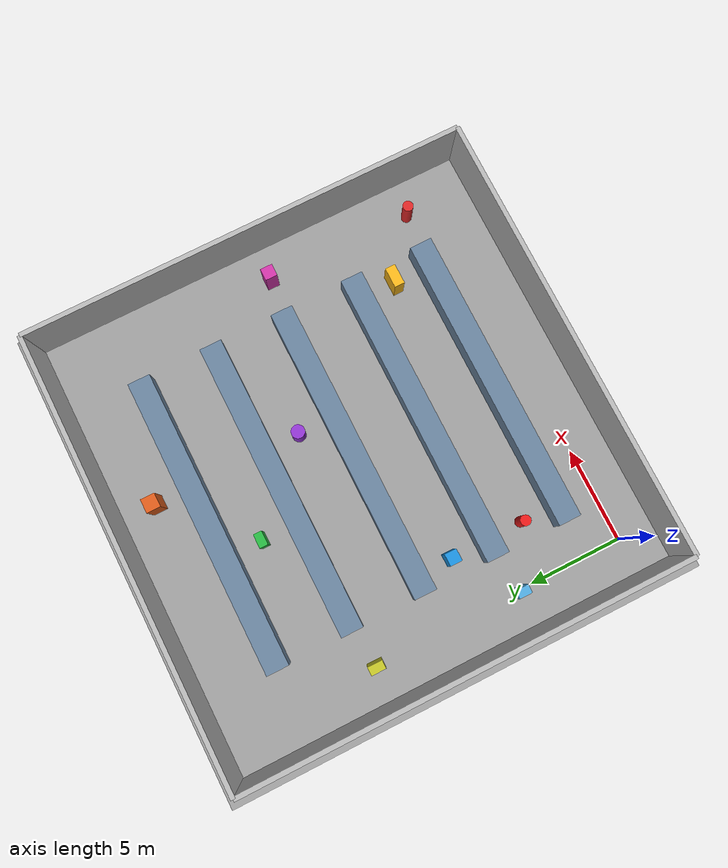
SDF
<?xml version="1.0"?>
<sdf version="1.6">
  <world name="factory_environment_v3_dynamic_obstacles">
    <!-- Direct Light to prevent online fetching -->
    <!-- ==================== sun：方向光 ==================== -->
    <!-- 内置方向光：从 (-0.5, 0.1, -0.9) 方向照射，开阴影，
         衰减范围 1000m，避免依赖在线 sun 模型。 -->
    <light name="sun" type="directional">
      <cast_shadows>1</cast_shadows>
      <pose>0 0 10 0 0 0</pose>
      <diffuse>0.8 0.8 0.8 1</diffuse>
      <specular>0.2 0.2 0.2 1</specular>
      <attenuation>
        <range>1000</range>
        <constant>0.9</constant>
        <linear>0.01</linear>
        <quadratic>0.001</quadratic>
      </attenuation>
      <direction>-0.5 0.1 -0.9</direction>
    </light>

    <!-- Ground -->
    <!-- ==================== ground：地面 ==================== -->
    <!-- 静态地面：26m × 26m × 0.05m，整体位于 (10, 10) 中心，
         使场地有效范围约为 x/y ∈ [0, 20]（与巡检点坐标对齐）。 -->
    <model name="ground">
      <static>true</static>
      <link name="ground_link">
        <collision name="collision">
          <geometry><box><size>26 26 0.05</size></box></geometry>
        </collision>
        <visual name="visual">
          <geometry><box><size>26 26 0.05</size></box></geometry>
          <material>
            <ambient>0.6 0.6 0.6 1</ambient>
            <diffuse>0.6 0.6 0.6 1</diffuse>
          </material>
        </visual>
      </link>
      <pose>10 10 -0.025 0 0 0</pose>
    </model>

    <!-- Walls -->
    <!-- ==================== 四面围墙 ==================== -->
    <!-- 北墙（y=22）、南墙（y=-2）、西墙（x=-2）、东墙（x=22）：
         均为 24m 长 × 0.25m 厚 × 3.0m 高的静态墙体，围成
         [0,20]×[0,20] 的有效导航区域。 -->
    <model name="north_wall">
      <static>true</static>
      <pose>10 22 1.5 0 0 0</pose>
      <link name="link">
        <collision name="collision"><geometry><box><size>24 0.25 3.0</size></box></geometry></collision>
        <visual name="visual"><geometry><box><size>24 0.25 3.0</size></box></geometry><material><ambient>0.7 0.7 0.7 1</ambient><diffuse>0.7 0.7 0.7 1</diffuse></material></visual>
      </link>
    </model>
    <model name="south_wall">
      <static>true</static>
      <pose>10 -2 1.5 0 0 0</pose>
      <link name="link">
        <collision name="collision"><geometry><box><size>24 0.25 3.0</size></box></geometry></collision>
        <visual name="visual"><geometry><box><size>24 0.25 3.0</size></box></geometry><material><ambient>0.7 0.7 0.7 1</ambient><diffuse>0.7 0.7 0.7 1</diffuse></material></visual>
      </link>
    </model>
    <model name="west_wall">
      <static>true</static>
      <pose>-2 10 1.5 0 0 0</pose>
      <link name="link">
        <collision name="collision"><geometry><box><size>0.25 24 3.0</size></box></geometry></collision>
        <visual name="visual"><geometry><box><size>0.25 24 3.0</size></box></geometry><material><ambient>0.7 0.7 0.7 1</ambient><diffuse>0.7 0.7 0.7 1</diffuse></material></visual>
      </link>
    </model>
    <model name="east_wall">
      <static>true</static>
      <pose>22 10 1.5 0 0 0</pose>
      <link name="link">
        <collision name="collision"><geometry><box><size>0.25 24 3.0</size></box></geometry></collision>
        <visual name="visual"><geometry><box><size>0.25 24 3.0</size></box></geometry><material><ambient>0.7 0.7 0.7 1</ambient><diffuse>0.7 0.7 0.7 1</diffuse></material></visual>
      </link>
    </model>

    <!-- 5 Rows of Desks/Machines with 4m spacing -->
    <!-- ==================== 5 排工作台（desk_row_1~5） ==================== -->
    <!-- 静态设备排：每排 16m × 1.2m × 1.2m，位于 x=10 沿 y 方向
         每 4m 一排（y=18/14/10/6/2），将场地分割成
         y=4/8/12/16/20 五条东西向巡检通道。 -->
    <model name="desk_row_1">
      <static>true</static>
      <pose>10 18 0.6 0 0 0</pose>
      <link name="link">
        <collision name="collision"><geometry><box><size>16 1.2 1.2</size></box></geometry></collision>
        <visual name="visual"><geometry><box><size>16 1.2 1.2</size></box></geometry><material><ambient>0.4 0.5 0.6 1</ambient><diffuse>0.4 0.5 0.6 1</diffuse></material></visual>
      </link>
    </model>
    <model name="desk_row_2">
      <static>true</static>
      <pose>10 14 0.6 0 0 0</pose>
      <link name="link">
        <collision name="collision"><geometry><box><size>16 1.2 1.2</size></box></geometry></collision>
        <visual name="visual"><geometry><box><size>16 1.2 1.2</size></box></geometry><material><ambient>0.4 0.5 0.6 1</ambient><diffuse>0.4 0.5 0.6 1</diffuse></material></visual>
      </link>
    </model>
    <model name="desk_row_3">
      <static>true</static>
      <pose>10 10 0.6 0 0 0</pose>
      <link name="link">
        <collision name="collision"><geometry><box><size>16 1.2 1.2</size></box></geometry></collision>
        <visual name="visual"><geometry><box><size>16 1.2 1.2</size></box></geometry><material><ambient>0.4 0.5 0.6 1</ambient><diffuse>0.4 0.5 0.6 1</diffuse></material></visual>
      </link>
    </model>
    <model name="desk_row_4">
      <static>true</static>
      <pose>10 6 0.6 0 0 0</pose>
      <link name="link">
        <collision name="collision"><geometry><box><size>16 1.2 1.2</size></box></geometry></collision>
        <visual name="visual"><geometry><box><size>16 1.2 1.2</size></box></geometry><material><ambient>0.4 0.5 0.6 1</ambient><diffuse>0.4 0.5 0.6 1</diffuse></material></visual>
      </link>
    </model>
    <model name="desk_row_5">
      <static>true</static>
      <pose>10 2 0.6 0 0 0</pose>
      <link name="link">
        <collision name="collision"><geometry><box><size>16 1.2 1.2</size></box></geometry></collision>
        <visual name="visual"><geometry><box><size>16 1.2 1.2</size></box></geometry><material><ambient>0.4 0.5 0.6 1</ambient><diffuse>0.4 0.5 0.6 1</diffuse></material></visual>
      </link>
    </model>

    <!-- ==================== DYNAMIC ROUTE OBSTACLES ==================== -->
    <!-- ==================== 动态路线障碍物（路点运动插件驱动） ==================== -->

    <!-- Route y=4, west half: cylinder crosses the route but avoids x=0/10/20. -->
    <!-- dyn_cylinder_y04_west：红色圆柱（半径 0.28m、高 1.40m），
         在 y=4 通道西半段沿 x 方向往复运动（避开 x=0/10/20 巡检点）。 -->
    <model name="dyn_cylinder_y04_west">
      <static>false</static>
      <pose>3 4 0.70 0 0 0</pose>
      <link name="body">
        <gravity>false</gravity>
        <collision name="collision">
          <geometry><cylinder><radius>0.28</radius><length>1.40</length></cylinder></geometry>
          <surface><contact><collide_without_contact>false</collide_without_contact></contact><friction><ode><mu>0.0</mu><mu2>0.0</mu2></ode></friction></surface>
        </collision>
        <visual name="visual">
          <geometry><cylinder><radius>0.28</radius><length>1.40</length></cylinder></geometry>
          <material><ambient>0.90 0.10 0.10 1</ambient><diffuse>0.90 0.10 0.10 1</diffuse></material>
        </visual>
      </link>
      <!-- 路点运动插件：x=3↔8 往复（每程约 20s，含 2s 原地转向）。 -->
      <plugin name="waypoint_motion" filename="libm20_waypoint_obstacle_plugin.so">
        <loop>true</loop>
        <trajectory>0 3 4 0.70 0 0 0;20 8 4 0.70 0 0 0;22 8 4 0.70 0 0 3.14159;42 3 4 0.70 0 0 3.14159;44 3 4 0.70 0 0 6.28318</trajectory>
      </plugin>
    </model>

    <!-- Route y=4, east half: rectangular cart. -->
    <!-- dyn_cart_y04_east：橙色长方体小车（1.10m × 0.55m × 1.30m），
         在 y=4 通道东半段沿 x 方向往复运动。 -->
    <model name="dyn_cart_y04_east">
      <static>false</static>
      <pose>17 4 0.65 0 0 3.14159</pose>
      <link name="body">
        <gravity>false</gravity>
        <collision name="collision">
          <geometry><box><size>1.10 0.55 1.30</size></box></geometry>
          <surface><contact><collide_without_contact>false</collide_without_contact></contact><friction><ode><mu>0.0</mu><mu2>0.0</mu2></ode></friction></surface>
        </collision>
        <visual name="visual">
          <geometry><box><size>1.10 0.55 1.30</size></box></geometry>
          <material><ambient>0.95 0.70 0.10 1</ambient><diffuse>0.95 0.70 0.10 1</diffuse></material>
        </visual>
      </link>
      <!-- 路点运动插件：x=17↔12 往复（每程约 22s，含 2s 原地转向）。 -->
      <plugin name="waypoint_motion" filename="libm20_waypoint_obstacle_plugin.so">
        <loop>true</loop>
        <trajectory>0 17 4 0.65 0 0 3.14159;22 12 4 0.65 0 0 3.14159;24 12 4 0.65 0 0 6.28318;46 17 4 0.65 0 0 6.28318;48 17 4 0.65 0 0 9.42477</trajectory>
      </plugin>
    </model>

    <!-- Route y=8, west half: square pillar. -->
    <!-- dyn_square_pillar_y08_west：蓝色方形柱体（0.65m 见方、高 1.40m），
         在 y=8 通道西半段沿 x 方向往复运动。 -->
    <model name="dyn_square_pillar_y08_west">
      <static>false</static>
      <pose>3 8 0.70 0 0 0</pose>
      <link name="body">
        <gravity>false</gravity>
        <collision name="collision">
          <geometry><box><size>0.65 0.65 1.40</size></box></geometry>
          <surface><contact><collide_without_contact>false</collide_without_contact></contact><friction><ode><mu>0.0</mu><mu2>0.0</mu2></ode></friction></surface>
        </collision>
        <visual name="visual">
          <geometry><box><size>0.65 0.65 1.40</size></box></geometry>
          <material><ambient>0.10 0.55 0.85 1</ambient><diffuse>0.10 0.55 0.85 1</diffuse></material>
        </visual>
      </link>
      <!-- 路点运动插件：x=3↔8 往复（每程约 24s，含 2s 原地转向）。 -->
      <plugin name="waypoint_motion" filename="libm20_waypoint_obstacle_plugin.so">
        <loop>true</loop>
        <trajectory>0 3 8 0.70 0 0 0;24 8 8 0.70 0 0 0;26 8 8 0.70 0 0 3.14159;50 3 8 0.70 0 0 3.14159;52 3 8 0.70 0 0 6.28318</trajectory>
      </plugin>
    </model>

    <!-- Route y=12, east half: large cylinder. -->
    <!-- dyn_cylinder_y12_east：紫色大圆柱（半径 0.36m、高 1.20m），
         在 y=12 通道东半段沿 x 方向往复运动。 -->
    <model name="dyn_cylinder_y12_east">
      <static>false</static>
      <pose>12 12 0.60 0 0 0</pose>
      <link name="body">
        <gravity>false</gravity>
        <collision name="collision">
          <geometry><cylinder><radius>0.36</radius><length>1.20</length></cylinder></geometry>
          <surface><contact><collide_without_contact>false</collide_without_contact></contact><friction><ode><mu>0.0</mu><mu2>0.0</mu2></ode></friction></surface>
        </collision>
        <visual name="visual">
          <geometry><cylinder><radius>0.36</radius><length>1.20</length></cylinder></geometry>
          <material><ambient>0.55 0.20 0.80 1</ambient><diffuse>0.55 0.20 0.80 1</diffuse></material>
        </visual>
      </link>
      <!-- 路点运动插件：x=12↔17 往复（每程约 20s，含 2s 原地转向）。 -->
      <plugin name="waypoint_motion" filename="libm20_waypoint_obstacle_plugin.so">
        <loop>true</loop>
        <trajectory>0 12 12 0.60 0 0 0;20 17 12 0.60 0 0 0;22 17 12 0.60 0 0 3.14159;42 12 12 0.60 0 0 3.14159;44 12 12 0.60 0 0 6.28318</trajectory>
      </plugin>
    </model>

    <!-- Route y=16, west half: low rectangular cart. -->
    <!-- dyn_cart_y16_west：绿色低矮小车（0.75m × 0.45m × 1.30m），
         在 y=16 通道西半段沿 x 方向往复运动。 -->
    <model name="dyn_cart_y16_west">
      <static>false</static>
      <pose>8 16 0.65 0 0 3.14159</pose>
      <link name="body">
        <gravity>false</gravity>
        <collision name="collision">
          <geometry><box><size>0.75 0.45 1.30</size></box></geometry>
          <surface><contact><collide_without_contact>false</collide_without_contact></contact><friction><ode><mu>0.0</mu><mu2>0.0</mu2></ode></friction></surface>
        </collision>
        <visual name="visual">
          <geometry><box><size>0.75 0.45 1.30</size></box></geometry>
          <material><ambient>0.15 0.70 0.25 1</ambient><diffuse>0.15 0.70 0.25 1</diffuse></material>
        </visual>
      </link>
      <!-- 路点运动插件：x=8↔3 往复（每程约 22s，含 2s 原地转向）。 -->
      <plugin name="waypoint_motion" filename="libm20_waypoint_obstacle_plugin.so">
        <loop>true</loop>
        <trajectory>0 8 16 0.65 0 0 3.14159;22 3 16 0.65 0 0 3.14159;24 3 16 0.65 0 0 6.28318;46 8 16 0.65 0 0 6.28318;48 8 16 0.65 0 0 9.42477</trajectory>
      </plugin>
    </model>

    <!-- Route y=20, east half: tall square pillar. -->
    <!-- dyn_square_pillar_y20_east：橙色高方形柱体（0.75m 见方、高 1.60m），
         在 y=20 通道东半段沿 x 方向往复运动。 -->
    <model name="dyn_square_pillar_y20_east">
      <static>false</static>
      <pose>12 20 0.80 0 0 0</pose>
      <link name="body">
        <gravity>false</gravity>
        <collision name="collision">
          <geometry><box><size>0.75 0.75 1.60</size></box></geometry>
          <surface><contact><collide_without_contact>false</collide_without_contact></contact><friction><ode><mu>0.0</mu><mu2>0.0</mu2></ode></friction></surface>
        </collision>
        <visual name="visual">
          <geometry><box><size>0.75 0.75 1.60</size></box></geometry>
          <material><ambient>0.85 0.35 0.10 1</ambient><diffuse>0.85 0.35 0.10 1</diffuse></material>
        </visual>
      </link>
      <!-- 路点运动插件：x=12↔17 往复（每程约 24s，含 2s 原地转向）。 -->
      <plugin name="waypoint_motion" filename="libm20_waypoint_obstacle_plugin.so">
        <loop>true</loop>
        <trajectory>0 12 20 0.80 0 0 0;24 17 20 0.80 0 0 0;26 17 20 0.80 0 0 3.14159;50 12 20 0.80 0 0 3.14159;52 12 20 0.80 0 0 6.28318</trajectory>
      </plugin>
    </model>

    <!-- Vertical turn corridor x=20, between y=0 and y=4. -->
    <!-- dyn_cylinder_x20_lower：红色圆柱（半径 0.28m、高 1.40m），
         在 x=20 竖向转弯走廊 y∈[0,4] 段沿 y 方向小幅往复（偏航 90° 放置）。 -->
    <model name="dyn_cylinder_x20_lower">
      <static>false</static>
      <pose>20 1.7 0.70 0 0 1.5708</pose>
      <link name="body">
        <gravity>false</gravity>
        <collision name="collision">
          <geometry><cylinder><radius>0.28</radius><length>1.40</length></cylinder></geometry>
          <surface><contact><collide_without_contact>false</collide_without_contact></contact><friction><ode><mu>0.0</mu><mu2>0.0</mu2></ode></friction></surface>
        </collision>
        <visual name="visual">
          <geometry><cylinder><radius>0.28</radius><length>1.40</length></cylinder></geometry>
          <material><ambient>0.85 0.15 0.15 1</ambient><diffuse>0.85 0.15 0.15 1</diffuse></material>
        </visual>
      </link>
      <!-- 路点运动插件：y=1.7↔2.3 往复（每程 5s，含 2s 原地转向）。 -->
      <plugin name="waypoint_motion" filename="libm20_waypoint_obstacle_plugin.so">
        <loop>true</loop>
        <trajectory>0 20 1.7 0.70 0 0 1.5708;3 20 2.3 0.70 0 0 1.5708;5 20 2.3 0.70 0 0 4.71239;8 20 1.7 0.70 0 0 4.71239;10 20 1.7 0.70 0 0 7.85398</trajectory>
      </plugin>
    </model>

    <!-- Vertical turn corridor x=0, between y=4 and y=8. -->
    <!-- dyn_box_x00_04_08：浅蓝色长方体（0.70m × 0.45m × 1.30m），
         在 x=0 竖向转弯走廊 y∈[4,8] 段沿 y 方向小幅往复。 -->
    <model name="dyn_box_x00_04_08">
      <static>false</static>
      <pose>0 5.7 0.65 0 0 1.5708</pose>
      <link name="body">
        <gravity>false</gravity>
        <collision name="collision">
          <geometry><box><size>0.70 0.45 1.30</size></box></geometry>
          <surface><contact><collide_without_contact>false</collide_without_contact></contact><friction><ode><mu>0.0</mu><mu2>0.0</mu2></ode></friction></surface>
        </collision>
        <visual name="visual">
          <geometry><box><size>0.70 0.45 1.30</size></box></geometry>
          <material><ambient>0.30 0.65 0.85 1</ambient><diffuse>0.30 0.65 0.85 1</diffuse></material>
        </visual>
      </link>
      <!-- 路点运动插件：y=5.7↔6.3 往复（每程 5s，含 2s 原地转向）。 -->
      <plugin name="waypoint_motion" filename="libm20_waypoint_obstacle_plugin.so">
        <loop>true</loop>
        <trajectory>0 0 5.7 0.65 0 0 1.5708;3 0 6.3 0.65 0 0 1.5708;5 0 6.3 0.65 0 0 4.71239;8 0 5.7 0.65 0 0 4.71239;10 0 5.7 0.65 0 0 7.85398</trajectory>
      </plugin>
    </model>

    <!-- Vertical turn corridor x=20, between y=8 and y=12. -->
    <!-- dyn_square_x20_08_12：品红色方形柱体（0.65m 见方、高 1.50m），
         在 x=20 竖向转弯走廊 y∈[8,12] 段沿 y 方向小幅往复。 -->
    <model name="dyn_square_x20_08_12">
      <static>false</static>
      <pose>20 9.7 0.75 0 0 1.5708</pose>
      <link name="body">
        <gravity>false</gravity>
        <collision name="collision">
          <geometry><box><size>0.65 0.65 1.50</size></box></geometry>
          <surface><contact><collide_without_contact>false</collide_without_contact></contact><friction><ode><mu>0.0</mu><mu2>0.0</mu2></ode></friction></surface>
        </collision>
        <visual name="visual">
          <geometry><box><size>0.65 0.65 1.50</size></box></geometry>
          <material><ambient>0.80 0.20 0.65 1</ambient><diffuse>0.80 0.20 0.65 1</diffuse></material>
        </visual>
      </link>
      <!-- 路点运动插件：y=9.7↔10.3 往复（每程 5s，含 2s 原地转向）。 -->
      <plugin name="waypoint_motion" filename="libm20_waypoint_obstacle_plugin.so">
        <loop>true</loop>
        <trajectory>0 20 9.7 0.75 0 0 1.5708;3 20 10.3 0.75 0 0 1.5708;5 20 10.3 0.75 0 0 4.71239;8 20 9.7 0.75 0 0 4.71239;10 20 9.7 0.75 0 0 7.85398</trajectory>
      </plugin>
    </model>

    <!-- Vertical turn corridor x=0, between y=12 and y=16. -->
    <!-- dyn_cart_x00_12_16：黄色长方体小车（0.80m × 0.45m × 1.30m），
         在 x=0 竖向转弯走廊 y∈[12,16] 段沿 y 方向小幅往复。 -->
    <model name="dyn_cart_x00_12_16">
      <static>false</static>
      <pose>0 13.7 0.65 0 0 1.5708</pose>
      <link name="body">
        <gravity>false</gravity>
        <collision name="collision">
          <geometry><box><size>0.80 0.45 1.30</size></box></geometry>
          <surface><contact><collide_without_contact>false</collide_without_contact></contact><friction><ode><mu>0.0</mu><mu2>0.0</mu2></ode></friction></surface>
        </collision>
        <visual name="visual">
          <geometry><box><size>0.80 0.45 1.30</size></box></geometry>
          <material><ambient>0.75 0.75 0.15 1</ambient><diffuse>0.75 0.75 0.15 1</diffuse></material>
        </visual>
      </link>
      <!-- 路点运动插件：y=13.7↔14.3 往复（每程 5s，含 2s 原地转向）。 -->
      <plugin name="waypoint_motion" filename="libm20_waypoint_obstacle_plugin.so">
        <loop>true</loop>
        <trajectory>0 0 13.7 0.65 0 0 1.5708;3 0 14.3 0.65 0 0 1.5708;5 0 14.3 0.65 0 0 4.71239;8 0 13.7 0.65 0 0 4.71239;10 0 13.7 0.65 0 0 7.85398</trajectory>
      </plugin>
    </model>

  </world>
</sdf>
